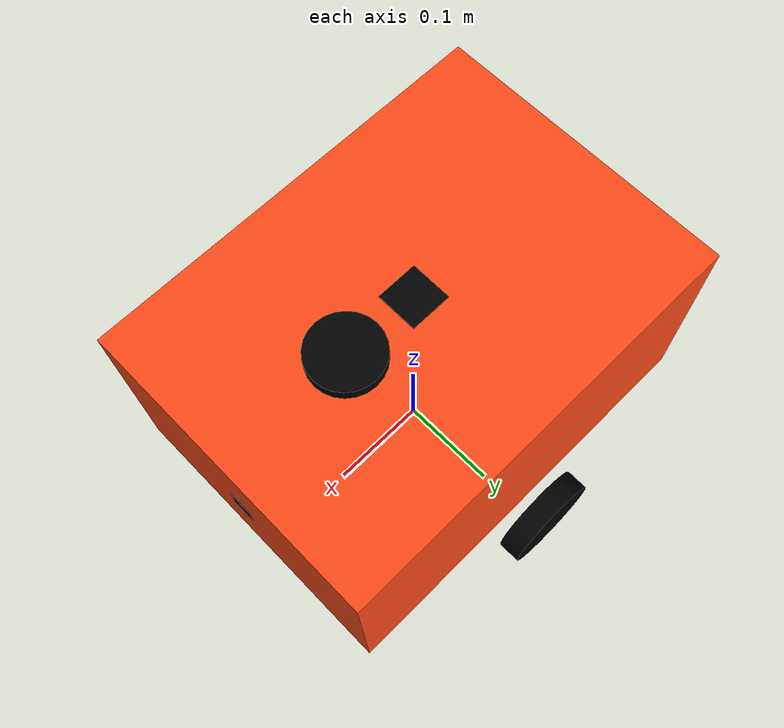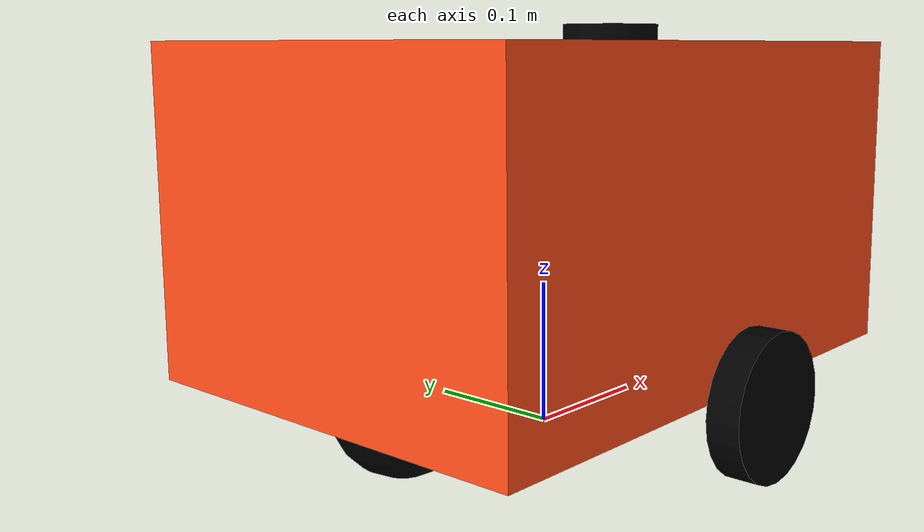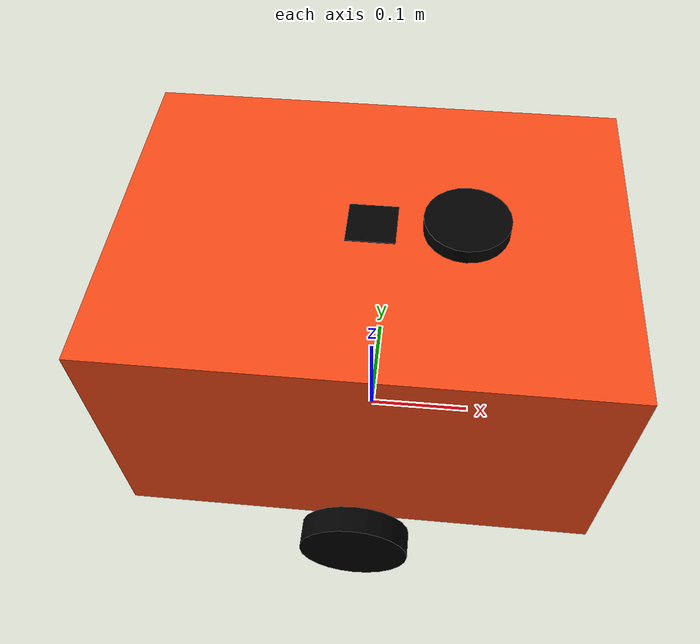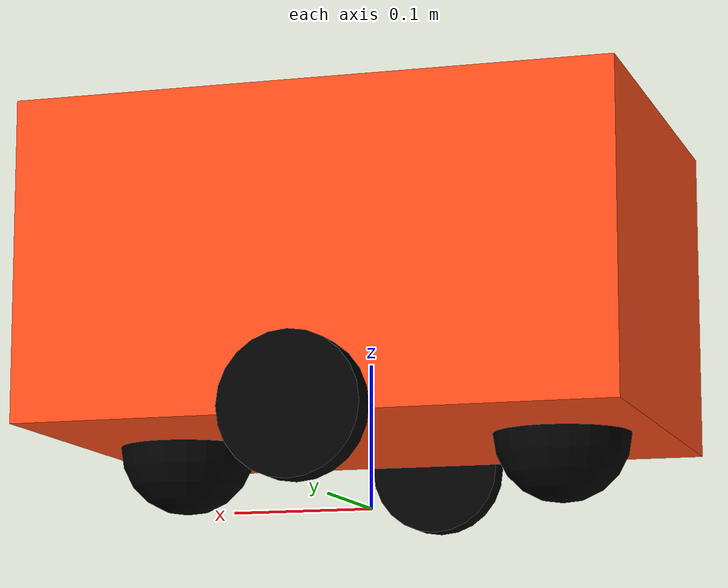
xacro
<?xml version="1.0"?>
<robot xmlns:xacro="http://www.ros.org/wiki/xacro"  name="robot">

    <xacro:include filename="robot_core.xacro" />
    <xacro:include filename="lidar.xacro" />
    <xacro:include filename="gazebo_control.xacro"/>
    <xacro:include filename="imu.xacro"/>
    <!--xacro:include filename="camera.xacro" /-->
    <xacro:include filename="depth_camera.xacro" />
</robot>

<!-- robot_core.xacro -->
<robot xmlns:xacro="http://www.ros.org/wiki/xacro">
    <xacro:include filename="inertial_macros.xacro"/>
    <material name="white">
        <color rgba="1 1 1 1" />
    </material>

    <material name="orange">
        <color rgba="1 0.3 0.1 1"/>
    </material>

    <material name="blue">
        <color rgba="0.2 0.2 1 1"/>
    </material>

    <material name="black">
        <color rgba="0 0 0 1"/>
    </material>

    <!-- BASE LINK -->
    <link name="base_link">
    </link>

    <!-- BASE FOOTPRINT LINK-->
    <joint name="base_footprint_joint" type="fixed">
        <parent link="base_link"/>
        <child link="base_footprint"/>
        <origin xyz="0 0 0" rpy="0 0 0"/>
    </joint>

    <link name="base_footprint">
    </link>

    <!-- CHASSIS LINK -->
    <joint name="chassis_joint" type="fixed">
        <parent link="base_link"/>
        <child link="chassis"/>
        <origin xyz="-0.205 0 0.0475"/>
    </joint>

    <link name="chassis">
        <visual>
            <origin xyz="0.205 0 0.11"/>
            <geometry>
                <box size="0.41 0.3 0.22"/>
            </geometry>
            <material name="orange"/>
        </visual>
        <collision>
            <origin xyz="0.205 0 0.11"/>
            <geometry>
                <box size="0.41 0.3 0.22"/>
            </geometry>
        </collision>
        <xacro:inertial_box mass="0.5" x="0.41" y="0.3" z="0.22">
            <origin xyz="0.205 0 0.11" rpy="0 0 0"/>
        </xacro:inertial_box>
    </link>

    <gazebo reference="chassis">
        <material>Gazebo/Orange</material>
    </gazebo>

    <!-- LEFT WHEEL LINK -->
    <joint name="left_wheel_joint" type="continuous">
        <parent link="chassis"/>
        <child link="left_wheel"/>
        <origin xyz="0.205 0.175 0" rpy="-${pi/2} 0 0" />
        <axis xyz="0 0 1"/>
    </joint>

    <link name="left_wheel">
        <visual>
            <geometry>
                <cylinder radius="0.0475" length="0.022"/>
            </geometry>
            <material name="black"/>
        </visual>
        <collision>
            <geometry>
                <cylinder radius="0.0475" length="0.022"/>
            </geometry>
        </collision>
        <xacro:inertial_cylinder mass="0.1" length="0.022" radius="0.0475">
            <origin xyz="0 0 0" rpy="0 0 0"/>
        </xacro:inertial_cylinder>
    </link>

    <gazebo reference="left_wheel">
        <material>Gazebo/Black</material>
    </gazebo>

    <!-- RIGHT WHEEL LINK -->
    <joint name="right_wheel_joint" type="continuous">
        <parent link="chassis"/>
        <child link="right_wheel"/>
        <origin xyz="0.205 -0.175 0" rpy="${pi/2} 0 0" />
        <axis xyz="0 0 -1"/>
    </joint>

    <link name="right_wheel">
        <visual>
            <geometry>
                <cylinder radius="0.0475" length="0.022"/>
            </geometry>
            <material name="black"/>
        </visual>
        <collision>
            <geometry>
                <cylinder radius="0.0475" length="0.022"/>
            </geometry>
        </collision>
        <xacro:inertial_cylinder mass="0.1" length="0.022" radius="0.0475">
            <origin xyz="0 0 0" rpy="0 0 0"/>
        </xacro:inertial_cylinder>
    </link>

    <gazebo reference="right_wheel">
        <material>Gazebo/Black</material>
    </gazebo>

     <!-- CASTER WHEEL LINK1-->

    <joint name="caster_wheel_joint1" type="fixed">
        <parent link="chassis"/>
        <child link="caster_wheel1"/>
        <origin xyz="0.07 0 0"/>
    </joint>

    <link name="caster_wheel1">
        <visual>
            <geometry>
                <sphere radius="0.0475"/>
            </geometry>
            <material name="black"/>
        </visual>
        <collision>
            <geometry>
                <sphere radius="0.0475"/>
            </geometry>
        </collision>
        <xacro:inertial_sphere mass="0.1" radius="0.0475">
            <origin xyz="0 0 0" rpy="0 0 0"/>
        </xacro:inertial_sphere>
    </link>

    <gazebo reference="caster_wheel1">
        <material>Gazebo/Black</material>
        <mu1 value="0.1"/>
        <mu2 value="0.1"/>
    </gazebo>

    <!-- CASTER WHEEL LINK2 -->

    <joint name="caster_wheel_joint2" type="fixed">
        <parent link="chassis"/>
        <child link="caster_wheel2"/>
        <origin xyz="0.34 0 0"/>
    </joint>

    <link name="caster_wheel2">
        <visual>
            <geometry>
                <sphere radius="0.0475"/>
            </geometry>
            <material name="black"/>
        </visual>
        <collision>
            <geometry>
                <sphere radius="0.0475"/>
            </geometry>
        </collision>
        <xacro:inertial_sphere mass="0.1" radius="0.0475">
            <origin xyz="0 0 0" rpy="0 0 0"/>
        </xacro:inertial_sphere>
    </link>

    <gazebo reference="caster_wheel2">
        <material>Gazebo/Black</material>
        <mu1 value="0.1"/>
        <mu2 value="0.1"/>
    </gazebo>

</robot>

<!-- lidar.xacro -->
<robot xmlns:xacro="http://www.ros.org/wiki/xacro">

    <joint name="laser_joint" type="fixed">
        <parent link="chassis"/>
        <child link="laser_frame"/>
        <origin xyz="0.28 0 0.22" rpy="0 0 0"/>
    </joint>

    <link name="laser_frame">
        <visual>
            <geometry>
                <cylinder radius="0.0346" length="0.025"/>
            </geometry>
            <material name="black"/>
        </visual>
        <collision>
            <geometry>
                <cylinder radius="0.0346" length="0.025"/>
            </geometry>
        </collision>
        <xacro:inertial_cylinder mass="0.1" length="0.025" radius="0.0346">
            <origin xyz="0 0 0" rpy="0 0 0"/>
        </xacro:inertial_cylinder>
    </link>

    <gazebo reference="laser_frame">
        <material>Gazebo/Black</material>

        <sensor name="laser" type="ray">
            <pose> 0 0 0 0 0 0 </pose>
            <visualize>false</visualize>
            <update_rate>10</update_rate>
            <ray>
                <scan>
                    <horizontal>
                        <samples>360</samples>
                        <min_angle>-3.14</min_angle>
                        <max_angle>3.14</max_angle>
                    </horizontal>
                </scan>
                <range>
                    <min>0.35</min>
                    <max>12</max>
                </range>
            </ray>
            <plugin name="laser_controller" filename="libgazebo_ros_ray_sensor.so">
                <ros>
                    <argument>~/out:=scan</argument>
                </ros>
                <output_type>sensor_msgs/LaserScan</output_type>
                <frame_name>laser_frame</frame_name>
            </plugin>
        </sensor>
    </gazebo>

</robot>

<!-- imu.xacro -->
<robot xmlns:xacro="http://www.ros.org/wiki/xacro">

    <joint name="imu_joint" type="fixed">
        <parent link="chassis"/>
        <child link="imu_link"/>
        <origin xyz="0.205 0 0.22" rpy="0 0 0"/>
    </joint>

    <link name="imu_link">
        <visual>
            <geometry>
                <box size="0.04 0.04 0.002"/>
            </geometry>
            <material name="black"/>
        </visual>
        <collision>
            <geometry>
                <box size="0.04 0.04 0.002"/>
            </geometry>
        </collision>
        <xacro:inertial_box mass="0.05" x="0.04" y="0.04" z="0.002">
    		<origin xyz="0 0 0" rpy="0 0 0"/>
	</xacro:inertial_box>

    </link>

    <gazebo reference="imu_link">
        <material>Gazebo/Blue</material>

        <sensor name="imu_sensor" type="imu">
            <pose>0 0 0 0 0 0</pose>
            <update_rate>100</update_rate>
            <always_on>true</always_on>
            <visualize>true</visualize>
            <plugin name="imu_plugin" filename="libgazebo_ros_imu_sensor.so">
    		<ros>
        		<namespace>/</namespace>
        		<topic>/imu/data</topic> <!-- Publish to /imu/data topic -->
    		</ros>
    		<frame_name>imu_link</frame_name>
   		<update_rate>100</update_rate> <!-- Match sensor update_rate -->
    		<gaussian_noise>0.01</gaussian_noise> <!-- Optional: Add noise for realism -->
    		<xyz_offset>0 0 0</xyz_offset> <!-- Optional: Offset from link origin -->
    		<rpy_offset>0 0 0</rpy_offset> <!-- Optional: Orientation offset -->
	    </plugin>
        </sensor>
    </gazebo>
</robot>

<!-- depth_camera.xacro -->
<robot xmlns:xacro="http://www.ros.org/wiki/xacro">

    <joint name="camera_joint" type="fixed">
        <parent link="chassis"/>
        <child link="camera_link"/>
        <origin xyz="0.41 0 0.11" rpy="0 0 0"/>
    </joint>

    <link name="camera_link">
        <visual>
            <geometry>
                <box size="0.001 0.025 0.025"/>
            </geometry>
            <material name="black"/>
        </visual>

    </link>

    <joint name="camea_optical_joint" type="fixed">
        <parent link="camera_link"/>
        <child link="camera_link_optical"/>
        <origin xyz="0 0 0" rpy="${-pi/2} 0 ${-pi/2}"/>
    </joint>

    <link name="camera_link_optical"></link>

    <gazebo reference="camera_link">
        <material>Gazebo/Black</material>

        <sensor name="camera" type="depth">
            <pose> 0 0 0 0 0 0 </pose>
            <visualize>true</visualize>
            <update_rate>10</update_rate>
            <camera>
                <horizontal_fov>1.089</horizontal_fov>
                <image>
                    <format>B8R8G8</format>
                    <width>640</width>
                    <height>489</height>
                </image>
                <clip>
                    <near>0.05</near>
                    <far>8.0</far>
                </clip>
            </camera>
            <plugin name="camera_controller" filename="libgazebo_ros_camera.so">
                <frame_name>camera_link_optical</frame_name>
                <min_depth>0.1</min_depth>
                <max_depth>100</max_depth>
            </plugin>
        </sensor>
    </gazebo>

</robot>
